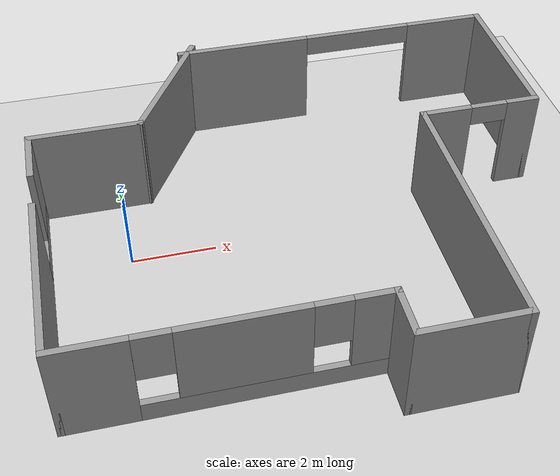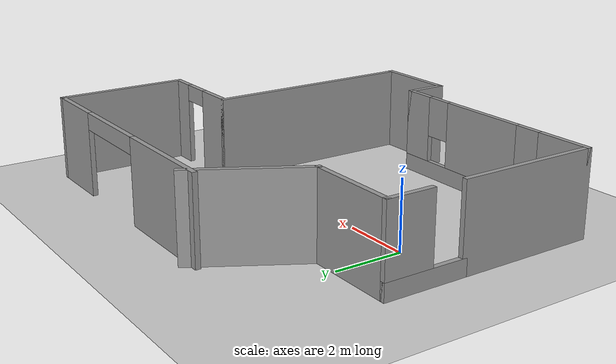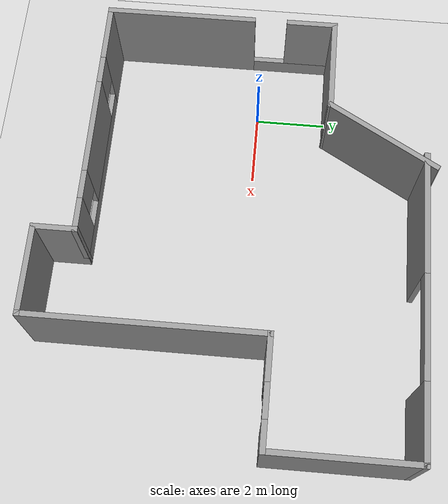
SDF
<sdf version="1.7">
 <world name="default">
  <light name="sun" type="directional">
   <pose>0 0 10 0 -0 0</pose>
   <diffuse>0.8 0.8 0.8 1</diffuse>
   <specular>0.2 0.2 0.2 1</specular>
   <attenuation>
    <range>1000</range>
    <constant>0.9</constant>
    <linear>0.01</linear>
    <quadratic>0.001</quadratic>
   </attenuation>
   <direction>-0.5 0.1 -0.9</direction>
   <spot><inner_angle>0</inner_angle><outer_angle>0</outer_angle><falloff>0</falloff></spot>
  </light>
  <model name="ground_plane">
   <static>1</static>
   <link name="link">
    <collision name="collision">
     <geometry><plane><normal>0 0 1</normal><size>100 100</size></plane></geometry>
     <surface><friction><ode><mu>100</mu><mu2>50</mu2></ode></friction></surface>
    </collision>
    <visual name="visual">
     <cast_shadows>0</cast_shadows>
     <geometry><plane><normal>0 0 1</normal><size>100 100</size></plane></geometry>
     <material>
      <script><uri>file://media/materials/scripts/gazebo.material</uri><name>Gazebo/Grey</name></script>
     </material>
    </visual>
   </link>
  </model>
  <gravity>0 0 -9.8</gravity>
  <magnetic_field>6e-06 2.3e-05 -4.2e-05</magnetic_field>
  <atmosphere type="adiabatic"/>
  <physics type="ode">
   <max_step_size>0.001</max_step_size>
   <real_time_factor>1</real_time_factor>
   <real_time_update_rate>1000</real_time_update_rate>
  </physics>
  <scene><ambient>0.4 0.4 0.4 1</ambient><background>0.7 0.7 0.7 1</background><shadows>1</shadows></scene>
  <audio><device>default</device></audio>
  <spherical_coordinates>
   <surface_model>EARTH_WGS84</surface_model>
   <latitude_deg>0</latitude_deg>
   <longitude_deg>0</longitude_deg>
   <elevation>0</elevation>
   <heading_deg>0</heading_deg>
  </spherical_coordinates>
  <model name="Untitled">
   <pose>4.11115 -0.285107 0 0 -0 0</pose>
   <link name="Wall_0">
    <collision name="Wall_0_Collision">
     <geometry><box><size>4.25 0.15 2.5</size></box></geometry>
     <pose>0 0 1.25 0 -0 0</pose>
    </collision>
    <visual name="Wall_0_Visual">
     <pose>0 0 1.25 0 -0 0</pose>
     <geometry><box><size>4.25 0.15 2.5</size></box></geometry>
     <material>
      <script><uri>file://media/materials/scripts/gazebo.material</uri><name>Gazebo/Grey</name></script>
      <ambient>1 1 1 1</ambient>
     </material>
     <meta><layer>0</layer></meta>
    </visual>
    <pose>-6.025 -2.08932 0 0 -0 -1.5708</pose>
   </link>
   <link name="Wall_1">
    <pose>-2.6 -4.13932 0 0 -0 0</pose>
    <visual name="Wall_1_Visual_0">
     <pose>-2.65717 0 1.25 0 -0 0</pose>
     <geometry><box><size>1.68567 0.15 2.5</size></box></geometry>
     <material>
      <script><uri>file://media/materials/scripts/gazebo.material</uri><name>Gazebo/Grey</name></script>
      <ambient>1 1 1 1</ambient>
     </material>
     <meta><layer>0</layer></meta>
    </visual>
    <collision name="Wall_1_Collision_0">
     <geometry><box><size>1.68567 0.15 2.5</size></box></geometry>
     <pose>-2.65717 0 1.25 0 -0 0</pose>
    </collision>
    <visual name="Wall_1_Visual_1">
     <pose>0.842834 0 0.25 0 -0 0</pose>
     <geometry><box><size>5.31433 0.15 0.5</size></box></geometry>
     <material>
      <script><uri>file://media/materials/scripts/gazebo.material</uri><name>Gazebo/Grey</name></script>
      <ambient>1 1 1 1</ambient>
     </material>
     <meta><layer>0</layer></meta>
    </visual>
    <collision name="Wall_1_Collision_1">
     <geometry><box><size>5.31433 0.15 0.5</size></box></geometry>
     <pose>0.842834 0 0.25 0 -0 0</pose>
    </collision>
    <visual name="Wall_1_Visual_2">
     <pose>0.359901 0 1.5 0 -0 0</pose>
     <geometry><box><size>2.74847 0.15 2</size></box></geometry>
     <material>
      <script><uri>file://media/materials/scripts/gazebo.material</uri><name>Gazebo/Grey</name></script>
      <ambient>1 1 1 1</ambient>
     </material>
     <meta><layer>0</layer></meta>
    </visual>
    <collision name="Wall_1_Collision_2">
     <geometry><box><size>2.74847 0.15 2</size></box></geometry>
     <pose>0.359901 0 1.5 0 -0 0</pose>
    </collision>
    <visual name="Wall_1_Visual_3">
     <pose>3.01707 0 1.5 0 -0 0</pose>
     <geometry><box><size>0.965866 0.15 2</size></box></geometry>
     <material>
      <script><uri>file://media/materials/scripts/gazebo.material</uri><name>Gazebo/Grey</name></script>
      <ambient>1 1 1 1</ambient>
     </material>
     <meta><layer>0</layer></meta>
    </visual>
    <collision name="Wall_1_Collision_3">
     <geometry><box><size>0.965866 0.15 2</size></box></geometry>
     <pose>3.01707 0 1.5 0 -0 0</pose>
    </collision>
    <visual name="Wall_1_Visual_4">
     <pose>-1.41433 0 1.9 0 -0 0</pose>
     <geometry><box><size>0.8 0.15 1.2</size></box></geometry>
     <material>
      <script><uri>file://media/materials/scripts/gazebo.material</uri><name>Gazebo/Grey</name></script>
      <ambient>1 1 1 1</ambient>
     </material>
     <meta><layer>0</layer></meta>
    </visual>
    <collision name="Wall_1_Collision_4">
     <geometry><box><size>0.8 0.15 1.2</size></box></geometry>
     <pose>-1.41433 0 1.9 0 -0 0</pose>
    </collision>
    <visual name="Wall_1_Visual_5">
     <pose>2.13413 0 1.9 0 -0 0</pose>
     <geometry><box><size>0.8 0.15 1.2</size></box></geometry>
     <material>
      <script><uri>file://media/materials/scripts/gazebo.material</uri><name>Gazebo/Grey</name></script>
      <ambient>1 1 1 1</ambient>
     </material>
     <meta><layer>0</layer></meta>
    </visual>
    <collision name="Wall_1_Collision_5">
     <geometry><box><size>0.8 0.15 1.2</size></box></geometry>
     <pose>2.13413 0 1.9 0 -0 0</pose>
    </collision>
   </link>
   <link name="Wall_12">
    <pose>-6.025 1.13568 0 0 -0 1.5708</pose>
    <visual name="Wall_12_Visual_0">
     <pose>0 0 0.25 0 -0 0</pose>
     <geometry><box><size>2.5 0.15 0.5</size></box></geometry>
     <material>
      <script><uri>file://media/materials/scripts/gazebo.material</uri><name>Gazebo/Grey</name></script>
      <ambient>1 1 1 1</ambient>
     </material>
     <meta><layer>0</layer></meta>
    </visual>
    <collision name="Wall_12_Collision_0">
     <geometry><box><size>2.5 0.15 0.5</size></box></geometry>
     <pose>0 0 0.25 0 -0 0</pose>
    </collision>
    <visual name="Wall_12_Visual_1">
     <pose>0.527776 0 1.5 0 -0 0</pose>
     <geometry><box><size>1.44445 0.15 2</size></box></geometry>
     <material>
      <script><uri>file://media/materials/scripts/gazebo.material</uri><name>Gazebo/Grey</name></script>
      <ambient>1 1 1 1</ambient>
     </material>
     <meta><layer>0</layer></meta>
    </visual>
    <collision name="Wall_12_Collision_1">
     <geometry><box><size>1.44445 0.15 2</size></box></geometry>
     <pose>0.527776 0 1.5 0 -0 0</pose>
    </collision>
   </link>
   <link name="Wall_13">
    <collision name="Wall_13_Collision">
     <geometry><box><size>2.75 0.15 2.5</size></box></geometry>
     <pose>0 0 1.25 0 -0 0</pose>
    </collision>
    <visual name="Wall_13_Visual">
     <pose>0 0 1.25 0 -0 0</pose>
     <geometry><box><size>2.75 0.15 2.5</size></box></geometry>
     <material>
      <script><uri>file://media/materials/scripts/gazebo.material</uri><name>Gazebo/Grey</name></script>
      <ambient>1 1 1 1</ambient>
     </material>
     <meta><layer>0</layer></meta>
    </visual>
    <pose>-4.725 2.31068 0 0 -0 0</pose>
   </link>
   <link name="Wall_14">
    <collision name="Wall_14_Collision">
     <geometry><box><size>3.5 0.15 2.5</size></box></geometry>
     <pose>0 0 1.25 0 -0 0</pose>
    </collision>
    <visual name="Wall_14_Visual">
     <pose>0 0 1.25 0 -0 0</pose>
     <geometry><box><size>3.5 0.15 2.5</size></box></geometry>
     <material>
      <script><uri>file://media/materials/scripts/gazebo.material</uri><name>Gazebo/Grey</name></script>
      <ambient>1 1 1 1</ambient>
     </material>
     <meta><layer>0</layer></meta>
    </visual>
    <pose>-2.5875 3.76127 0 0 -0 1.0472</pose>
   </link>
   <link name="Wall_2">
    <collision name="Wall_2_Collision">
     <geometry><box><size>1.25 0.15 2.5</size></box></geometry>
     <pose>0 0 1.25 0 -0 0</pose>
    </collision>
    <visual name="Wall_2_Visual">
     <pose>0 0 1.25 0 -0 0</pose>
     <geometry><box><size>1.25 0.15 2.5</size></box></geometry>
     <material>
      <script><uri>file://media/materials/scripts/gazebo.material</uri><name>Gazebo/Grey</name></script>
      <ambient>1 1 1 1</ambient>
     </material>
     <meta><layer>0</layer></meta>
    </visual>
    <pose>0.825 -4.68932 0 0 -0 -1.5708</pose>
   </link>
   <link name="Wall_3">
    <collision name="Wall_3_Collision">
     <geometry><box><size>2.5 0.15 2.5</size></box></geometry>
     <pose>0 0 1.25 0 -0 0</pose>
    </collision>
    <visual name="Wall_3_Visual">
     <pose>0 0 1.25 0 -0 0</pose>
     <geometry><box><size>2.5 0.15 2.5</size></box></geometry>
     <material>
      <script><uri>file://media/materials/scripts/gazebo.material</uri><name>Gazebo/Grey</name></script>
      <ambient>1 1 1 1</ambient>
     </material>
     <meta><layer>0</layer></meta>
    </visual>
    <pose>2 -5.23932 0 0 -0 0</pose>
   </link>
   <link name="Wall_4">
    <collision name="Wall_4_Collision">
     <geometry><box><size>6.5 0.15 2.5</size></box></geometry>
     <pose>0 0 1.25 0 -0 0</pose>
    </collision>
    <visual name="Wall_4_Visual">
     <pose>0 0 1.25 0 -0 0</pose>
     <geometry><box><size>6.5 0.15 2.5</size></box></geometry>
     <material>
      <script><uri>file://media/materials/scripts/gazebo.material</uri><name>Gazebo/Grey</name></script>
      <ambient>1 1 1 1</ambient>
     </material>
     <meta><layer>0</layer></meta>
    </visual>
    <pose>3.175 -2.06432 0 0 -0 1.5708</pose>
   </link>
   <link name="Wall_5">
    <pose>4.6 1.11068 0 0 -0 0</pose>
    <visual name="Wall_5_Visual_0">
     <pose>-0.861878 0 1.25 0 -0 0</pose>
     <geometry><box><size>1.27624 0.15 2.5</size></box></geometry>
     <material>
      <script><uri>file://media/materials/scripts/gazebo.material</uri><name>Gazebo/Grey</name></script>
      <ambient>1 1 1 1</ambient>
     </material>
     <meta><layer>0</layer></meta>
    </visual>
    <collision name="Wall_5_Collision_0">
     <geometry><box><size>1.27624 0.15 2.5</size></box></geometry>
     <pose>-0.861878 0 1.25 0 -0 0</pose>
    </collision>
    <visual name="Wall_5_Visual_1">
     <pose>1.08812 0 1.25 0 -0 0</pose>
     <geometry><box><size>0.823756 0.15 2.5</size></box></geometry>
     <material>
      <script><uri>file://media/materials/scripts/gazebo.material</uri><name>Gazebo/Grey</name></script>
      <ambient>1 1 1 1</ambient>
     </material>
     <meta><layer>0</layer></meta>
    </visual>
    <collision name="Wall_5_Collision_1">
     <geometry><box><size>0.823756 0.15 2.5</size></box></geometry>
     <pose>1.08812 0 1.25 0 -0 0</pose>
    </collision>
    <visual name="Wall_5_Visual_2">
     <pose>0.226244 0 2.25 0 -0 0</pose>
     <geometry><box><size>0.9 0.15 0.5</size></box></geometry>
     <material>
      <script><uri>file://media/materials/scripts/gazebo.material</uri><name>Gazebo/Grey</name></script>
      <ambient>1 1 1 1</ambient>
     </material>
     <meta><layer>0</layer></meta>
    </visual>
    <collision name="Wall_5_Collision_2">
     <geometry><box><size>0.9 0.15 0.5</size></box></geometry>
     <pose>0.226244 0 2.25 0 -0 0</pose>
    </collision>
   </link>
   <link name="Wall_6">
    <collision name="Wall_6_Collision">
     <geometry><box><size>4 0.15 2.5</size></box></geometry>
     <pose>0 0 1.25 0 -0 0</pose>
    </collision>
    <visual name="Wall_6_Visual">
     <pose>0 0 1.25 0 -0 0</pose>
     <geometry><box><size>4 0.15 2.5</size></box></geometry>
     <material>
      <script><uri>file://media/materials/scripts/gazebo.material</uri><name>Gazebo/Grey</name></script>
      <ambient>1 1 1 1</ambient>
     </material>
     <meta><layer>0</layer></meta>
    </visual>
    <pose>6.025 3.03568 0 0 -0 1.5708</pose>
   </link>
   <link name="Wall_7">
    <pose>1.975 4.96068 0 0 -0 3.14159</pose>
    <visual name="Wall_7_Visual_0">
     <pose>-3.09367 0 1.25 0 -0 0</pose>
     <geometry><box><size>2.06266 0.15 2.5</size></box></geometry>
     <material>
      <script><uri>file://media/materials/scripts/gazebo.material</uri><name>Gazebo/Grey</name></script>
      <ambient>1 1 1 1</ambient>
     </material>
     <meta><layer>0</layer></meta>
    </visual>
    <collision name="Wall_7_Collision_0">
     <geometry><box><size>2.06266 0.15 2.5</size></box></geometry>
     <pose>-3.09367 0 1.25 0 -0 0</pose>
    </collision>
    <visual name="Wall_7_Visual_1">
     <pose>2.41433 0 1.25 0 -0 0</pose>
     <geometry><box><size>3.42134 0.15 2.5</size></box></geometry>
     <material>
      <script><uri>file://media/materials/scripts/gazebo.material</uri><name>Gazebo/Grey</name></script>
      <ambient>1 1 1 1</ambient>
     </material>
     <meta><layer>0</layer></meta>
    </visual>
    <collision name="Wall_7_Collision_1">
     <geometry><box><size>3.42134 0.15 2.5</size></box></geometry>
     <pose>2.41433 0 1.25 0 -0 0</pose>
    </collision>
    <visual name="Wall_7_Visual_2">
     <pose>-0.679338 0 2.25 0 -0 0</pose>
     <geometry><box><size>2.766 0.15 0.5</size></box></geometry>
     <material>
      <script><uri>file://media/materials/scripts/gazebo.material</uri><name>Gazebo/Grey</name></script>
      <ambient>1 1 1 1</ambient>
     </material>
     <meta><layer>0</layer></meta>
    </visual>
    <collision name="Wall_7_Collision_2">
     <geometry><box><size>2.766 0.15 0.5</size></box></geometry>
     <pose>-0.679338 0 2.25 0 -0 0</pose>
    </collision>
   </link>
   <static>1</static>
  </model>
 </world>
</sdf>
